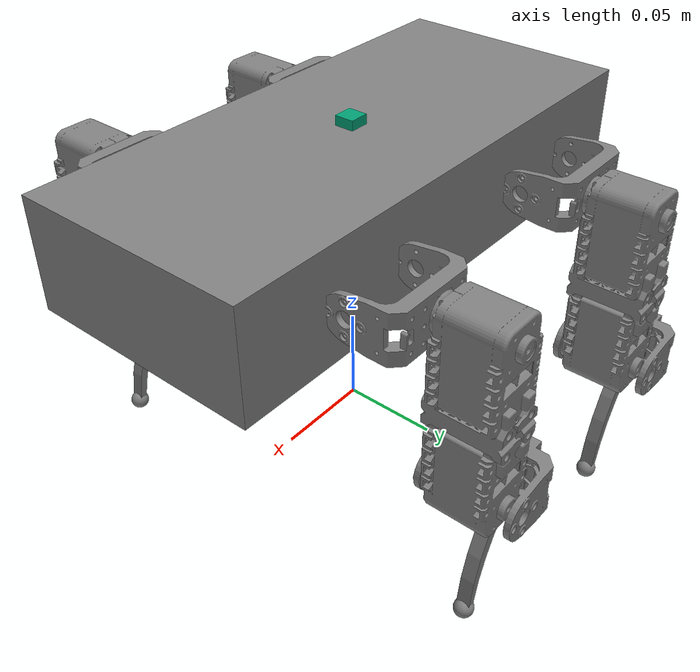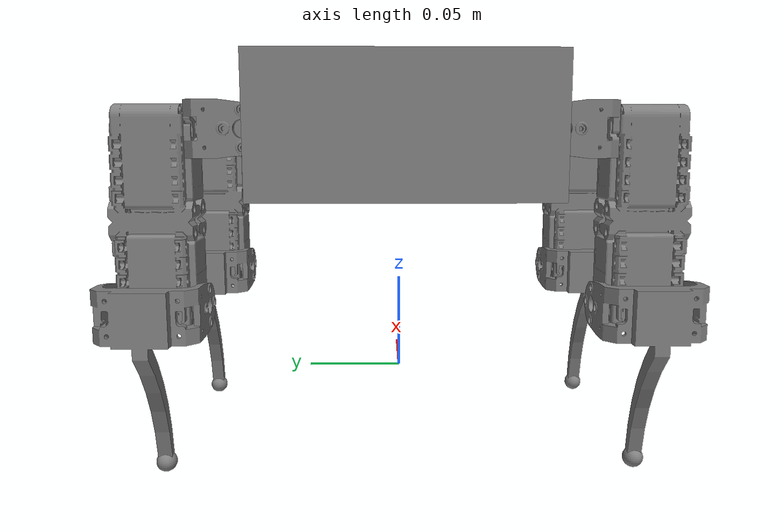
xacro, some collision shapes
<?xml version="1.0"?>
<robot xmlns:xacro="http://ros.org/wiki/xacro" name="pupbot">
  <material name="grey">
    <color rgba="0.5 0.5 0.5 1.0"/>
  </material>
  <!-- base -->
  <link name="world"/>
  <!-- body -->
  <joint name="base_joint" type="fixed">
    <parent link="world"/>
    <child link="base_link"/>
    <origin xyz="0 0 0" rpy="0 0 0"/>
  </joint>
  <link name="base_link">
    <inertial>
      <origin xyz="0 0 0.13" rpy="0 0 0"/>
      <mass value="0.796"/>
      <inertia ixx="0.0011654561" ixy="0.0" ixz="0.0" iyy="0.00488505272" iyz="0.0" izz="0.00562999661"/>
    </inertial>
    <visual>
      <origin xyz="0 0 0.13" rpy="0 0 0"/>
      <geometry>
        <mesh filename="package://pupbot/stl/body.stl"/>
      </geometry>
      <material name="grey"/>
    </visual>
    <collision>
      <origin xyz="0 0 0.13" rpy="0 0 0"/>
      <geometry>
        <box size="0.26547 0.12 0.0563"/>
      </geometry>
    </collision>
  </link>
  <gazebo reference="base_link">
    <material>Gazebo/DarkGrey</material>
    <selfCollide>true</selfCollide>
  </gazebo>
  <!-- IMU -->
  <joint name="imu_joint" type="fixed">
    <parent link="base_link"/>
    <child link="imu_link"/>
    <origin xyz="0 0 0" rpy="0 0 0"/>
  </joint>
  <link name="imu_link">
    <visual>
      <origin rpy="0 0 0" xyz="0 0 0.15815"/>
      <geometry>
        <box size="0.01 0.01 0.01"/>
      </geometry>
    </visual>
  </link>
  <gazebo reference="imu_link">
    <sensor type="imu" name="imu">
      <always_on>true</always_on>
      <plugin filename="libgazebo_ros_imu_sensor.so" name="imu_plugin">
        <topicName>imu</topicName>
        <bodyName>imu_link</bodyName>
        <updateRateHZ>10.0</updateRateHZ>
        <gaussianNoise>0.0</gaussianNoise>
        <xyzOffset>0 0 0</xyzOffset>
        <rpyOffset>0 0 0</rpyOffset>
        <frameName>imu_link</frameName>
        <initialOrientationAsReference>false</initialOrientationAsReference>
      </plugin>
    </sensor>
  </gazebo>
  <!-- left_legs macro -->
  <xacro:macro name="left_legs_macro" params="prefix xyz1 xyz2 xyz3 xyz4 effort velocity">
    <!-- left leg shoulder -->
    <joint name="${prefix}_shoulder_joint" type="revolute">
      <origin xyz="${xyz1}" rpy="0 ${radians(-90)} 0"/>
      <parent link="base_link"/>
      <child link="${prefix}_shoulder_link"/>
      <axis xyz="0 0 1"/>
      <limit lower="-1" upper="1.5" effort="${effort}" velocity="${velocity}"/>
    </joint>
    <transmission name="${prefix}_shoulder_trans">
      <type>transmission_interface/SimpleTransmission</type>
      <joint name="${prefix}_shoulder_joint">
        <hardwareInterface>hardware_interface/EffortJointInterface</hardwareInterface>
      </joint>
      <actuator name="${prefix}_shoulder_motor">
        <hardwareInterface>hardware_interface/EffortJointInterface</hardwareInterface>
        <mechanismReduction>1</mechanismReduction>
      </actuator>
    </transmission>
    <link name="${prefix}_shoulder_link">
      <inertial>
        <origin xyz="0 0.015 ${xyz4}" rpy="0 0 0"/>
        <mass value="0.0090718"/>
        <inertia ixx="0.00000219235" ixy="0.0" ixz="0.0" iyy="0.00000219235" iyz="0.0" izz="0.000000604786667"/>
      </inertial>
      <visual>
        <origin xyz="${xyz2}" rpy="0 0 0"/>
        <geometry>
          <mesh filename="package://pupbot/stl/leg_shoulder.stl"/>
        </geometry>
        <material name="grey"/>
      </visual>
      <collision>
        <origin xyz="0 0.015 ${xyz4}" rpy="0 0 0"/>
        <geometry>
          <box size="0.02 0.02 0.05"/>
        </geometry>
      </collision>
    </link>
    <gazebo reference="${prefix}_shoulder_link">
      <material>Gazebo/Grey</material>
      <mu1>1.0</mu1>
      <mu2>1.0</mu2>
      <maxVel>1.0</maxVel>
      <minDepth>0.001</minDepth>
      <selfCollide>true</selfCollide>
    </gazebo>
    <!-- left leg upper -->
    <joint name="${prefix}_upper_joint" type="revolute">
      <origin xyz="${xyz3}" rpy="${radians(-90)} ${radians(90)} 0"/>
      <parent link="${prefix}_shoulder_link"/>
      <child link="${prefix}_upper_link"/>
      <axis xyz="0 0 1"/>
      <limit lower="-1.0" upper="2.0" effort="${effort}" velocity="${velocity}"/>
    </joint>
    <transmission name="${prefix}_upper_trans">
      <type>transmission_interface/SimpleTransmission</type>
      <joint name="${prefix}_upper_joint">
        <hardwareInterface>hardware_interface/EffortJointInterface</hardwareInterface>
      </joint>
      <actuator name="${prefix}_upper_motor">
        <hardwareInterface>hardware_interface/EffortJointInterface</hardwareInterface>
        <mechanismReduction>1</mechanismReduction>
      </actuator>
    </transmission>
    <link name="${prefix}_upper_link">
      <inertial>
        <origin xyz="0 0.04 0.015" rpy="0 0 0"/>
        <mass value="0.1273437"/>
        <inertia ixx="0.00009550777" ixy="0.0" ixz="0.0" iyy="0.00001379556" iyz="0.0" izz="0.00009020178"/>
      </inertial>
      <visual>
        <origin xyz="0 0 0" rpy="0 0 ${radians(180)}"/>
        <geometry>
          <mesh filename="package://pupbot/stl/leg_upper.stl"/>
        </geometry>
        <material name="grey"/>
      </visual>
      <collision>
        <origin xyz="0 0.04 0.015" rpy="0 0 0"/>
        <geometry>
          <box size="0.02 0.09 0.03"/>
        </geometry>
      </collision>
    </link>
    <gazebo reference="${prefix}_upper_link">
      <material>Gazebo/Grey</material>
      <mu1>1.0</mu1>
      <mu2>1.0</mu2>
      <maxVel>1.0</maxVel>
      <minDepth>0.001</minDepth>
      <selfCollide>true</selfCollide>
    </gazebo>
    <!-- left leg lower -->
    <joint name="${prefix}_lower_joint" type="revolute">
      <origin xyz="0 0.083 0" rpy="0 ${radians(180)} 0"/>
      <parent link="${prefix}_upper_link"/>
      <child link="${prefix}_lower_link"/>
      <axis xyz="0 0 1"/>
      <limit lower="0.0" upper="3.0" effort="${effort}" velocity="${velocity}"/>
    </joint>
    <transmission name="${prefix}_lower_trans">
      <type>transmission_interface/SimpleTransmission</type>
      <joint name="${prefix}_lower_joint">
        <hardwareInterface>hardware_interface/EffortJointInterface</hardwareInterface>
      </joint>
      <actuator name="${prefix}_lower_motor">
        <hardwareInterface>hardware_interface/EffortJointInterface</hardwareInterface>
        <mechanismReduction>1</mechanismReduction>
      </actuator>
    </transmission>
    <link name="${prefix}_lower_link">
      <inertial>
        <origin xyz="0 0.0365 -0.021" rpy="0 ${radians(-180)} 0"/>
        <mass value="0.0181437"/>
        <inertia ixx="0.00000820851" ixy="0.0" ixz="0.0" iyy="0.000000302395" iyz="0.0" izz="0.00000820851"/>
      </inertial>
      <visual>
        <origin xyz="0 0 -0.042" rpy="0 ${radians(-90)} 0"/>
        <geometry>
          <mesh filename="package://pupbot/stl/leg_lower.stl"/>
        </geometry>
        <material name="grey"/>
      </visual>
      <collision>
        <origin xyz="0 0.0365 -0.021" rpy="0 0 0"/>
        <geometry>
          <box size="0.01 0.073 0.01"/>
        </geometry>
      </collision>
    </link>
    <gazebo reference="${prefix}_lower_link">
      <material>Gazebo/Grey</material>
      <mu1>1.0</mu1>
      <mu2>1.0</mu2>
      <maxVel>1.0</maxVel>
      <minDepth>0.001</minDepth>
      <selfCollide>true</selfCollide>
    </gazebo>
    <joint name="${prefix}_lower_ball_joint" type="fixed">
      <origin xyz="0 0.073 0" rpy="0 0 0"/>
      <parent link="${prefix}_lower_link"/>
      <child link="${prefix}_lower_ball"/>
    </joint>
    <link name="${prefix}_lower_ball">
      <collision>
        <origin xyz="0 0.005 -0.021" rpy="0 0 0"/>
        <geometry>
          <sphere radius="0.005"/>
        </geometry>
      </collision>
    </link>
    <gazebo reference="${prefix}_lower_ball">
      <material>Gazebo/Grey</material>
      <mu1>0.5</mu1>
      <mu2>0.5</mu2>
      <maxVel>1.0</maxVel>
      <minDepth>0.001</minDepth>
      <selfCollide>true</selfCollide>
    </gazebo>
  </xacro:macro>
  <!-- left legs -->
  <xacro:left_legs_macro prefix="leftfront_leg" xyz1="0.0834 0.068518 0.13" xyz2="0.0 0.0 0.0" xyz3="0 0.026 0.025" xyz4="0.02" effort="1.5" velocity="6.17"/>
  <xacro:left_legs_macro prefix="leftback_leg" xyz1="-0.0834 0.068518 0.13" xyz2="0.0 0.0 -0.042" xyz3="0 0.026 -0.025" xyz4="-0.02" effort="1.5" velocity="6.17"/>
  <!-- right_legs macro -->
  <xacro:macro name="right_legs_macro" params="prefix xyz1 xyz2 xyz3 xyz4 effort velocity">
    <!-- right leg shoulder -->
    <joint name="${prefix}_shoulder_joint" type="revolute">
      <origin xyz="${xyz1}" rpy="0 ${radians(-90)} 0"/>
      <parent link="base_link"/>
      <child link="${prefix}_shoulder_link"/>
      <axis xyz="0 0 1"/>
      <limit lower="-1.5" upper="1" effort="${effort}" velocity="${velocity}"/>
    </joint>
    <transmission name="${prefix}_shoulder_trans">
      <type>transmission_interface/SimpleTransmission</type>
      <joint name="${prefix}_shoulder_joint">
        <hardwareInterface>hardware_interface/EffortJointInterface</hardwareInterface>
      </joint>
      <actuator name="${prefix}_shoulder_motor">
        <hardwareInterface>hardware_interface/EffortJointInterface</hardwareInterface>
        <mechanismReduction>1</mechanismReduction>
      </actuator>
    </transmission>
    <link name="${prefix}_shoulder_link">
      <inertial>
        <origin xyz="0 -0.015 ${xyz4}" rpy="0 0 0"/>
        <mass value="0.0090718"/>
        <inertia ixx="0.00000219235" ixy="0.0" ixz="0.0" iyy="0.00000219235" iyz="0.0" izz="0.000000604786667"/>
      </inertial>
      <visual>
        <origin xyz="${xyz2}" rpy="0 0 ${radians(180)}"/>
        <geometry>
          <mesh filename="package://pupbot/stl/leg_shoulder.stl"/>
        </geometry>
        <material name="grey"/>
      </visual>
      <collision>
        <origin xyz="0 -0.015 ${xyz4}" rpy="0 0 0"/>
        <geometry>
          <box size="0.02 0.02 0.05"/>
        </geometry>
      </collision>
    </link>
    <gazebo reference="${prefix}_shoulder_link">
      <material>Gazebo/Grey</material>
      <mu1>1.0</mu1>
      <mu2>1.0</mu2>
      <maxVel>1.0</maxVel>
      <minDepth>0.001</minDepth>
      <selfCollide>true</selfCollide>
    </gazebo>
    <!-- right leg upper -->
    <joint name="${prefix}_upper_joint" type="revolute">
      <origin xyz="${xyz3}" rpy="${radians(90)} ${radians(-90)} 0"/>
      <parent link="${prefix}_shoulder_link"/>
      <child link="${prefix}_upper_link"/>
      <axis xyz="0 0 1"/>
      <limit lower="-2.0" upper="1.0" effort="${effort}" velocity="${velocity}"/>
    </joint>
    <transmission name="${prefix}_upper_trans">
      <type>transmission_interface/SimpleTransmission</type>
      <joint name="${prefix}_upper_joint">
        <hardwareInterface>hardware_interface/EffortJointInterface</hardwareInterface>
      </joint>
      <actuator name="${prefix}_upper_motor">
        <hardwareInterface>hardware_interface/EffortJointInterface</hardwareInterface>
        <mechanismReduction>1</mechanismReduction>
      </actuator>
    </transmission>
    <link name="${prefix}_upper_link">
      <inertial>
        <origin xyz="0 0.04 0.015" rpy="0 ${radians(180)} 0"/>
        <mass value="0.1273437"/>
        <inertia ixx="0.00009550777" ixy="0.0" ixz="0.0" iyy="0.00001379556" iyz="0.0" izz="0.00009020178"/>
      </inertial>
      <visual>
        <origin xyz="0 0 0" rpy="0 ${radians(0)} ${radians(180)}"/>
        <geometry>
          <mesh filename="package://pupbot/stl/leg_upper.stl"/>
        </geometry>
        <material name="grey"/>
      </visual>
      <collision>
        <origin xyz="0 0.04 0.015" rpy="0 0 0"/>
        <geometry>
          <box size="0.02 0.09 0.03"/>
        </geometry>
      </collision>
    </link>
    <gazebo reference="${prefix}_upper_link">
      <material>Gazebo/Grey</material>
      <mu1>1.0</mu1>
      <mu2>1.0</mu2>
      <maxVel>1.0</maxVel>
      <minDepth>0.001</minDepth>
      <selfCollide>true</selfCollide>
    </gazebo>
    <!-- right leg lower -->
    <joint name="${prefix}_lower_joint" type="revolute">
      <origin xyz="0 0.083 0" rpy="0 ${radians(180)} 0"/>
      <parent link="${prefix}_upper_link"/>
      <child link="${prefix}_lower_link"/>
      <axis xyz="0 0 1"/>
      <limit lower="-3.0" upper="0.0" effort="${effort}" velocity="${velocity}"/>
    </joint>
    <transmission name="${prefix}_lower_trans">
      <type>transmission_interface/SimpleTransmission</type>
      <joint name="${prefix}_lower_joint">
        <hardwareInterface>hardware_interface/EffortJointInterface</hardwareInterface>
      </joint>
      <actuator name="${prefix}_lower_motor">
        <hardwareInterface>hardware_interface/EffortJointInterface</hardwareInterface>
        <mechanismReduction>1</mechanismReduction>
      </actuator>
    </transmission>
    <link name="${prefix}_lower_link">
      <inertial>
        <origin xyz="0 0.0365 -0.021" rpy="0 0 0"/>
        <mass value="0.0181437"/>
        <inertia ixx="0.00000820851" ixy="0.0" ixz="0.0" iyy="0.000000302395" iyz="0.0" izz="0.00000820851"/>
      </inertial>
      <visual>
        <origin xyz="0 0 0" rpy="0 ${radians(90)} 0"/>
        <geometry>
          <mesh filename="package://pupbot/stl/leg_lower.stl"/>
        </geometry>
        <material name="grey"/>
      </visual>
      <collision>
        <origin xyz="0 0.0365 -0.021" rpy="0 0 0"/>
        <geometry>
          <box size="0.01 0.073 0.01"/>
        </geometry>
      </collision>
    </link>
    <gazebo reference="${prefix}_lower_link">
      <material>Gazebo/Grey</material>
      <mu1>1.0</mu1>
      <mu2>1.0</mu2>
      <maxVel>1.0</maxVel>
      <minDepth>0.001</minDepth>
      <selfCollide>true</selfCollide>
    </gazebo>
    <joint name="${prefix}_lower_ball_joint" type="fixed">
      <origin xyz="0 0.073 0" rpy="0 0 0"/>
      <parent link="${prefix}_lower_link"/>
      <child link="${prefix}_lower_ball"/>
    </joint>
    <link name="${prefix}_lower_ball">
      <collision>
        <origin xyz="0 0.005 -0.021" rpy="0 0 0"/>
        <geometry>
          <sphere radius="0.005"/>
        </geometry>
      </collision>
    </link>
    <gazebo reference="${prefix}_lower_ball">
      <material>Gazebo/Grey</material>
      <mu1>0.5</mu1>
      <mu2>0.5</mu2>
      <maxVel>1.0</maxVel>
      <minDepth>0.001</minDepth>
      <selfCollide>true</selfCollide>
    </gazebo>
  </xacro:macro>
  <!-- right legs -->
  <xacro:right_legs_macro prefix="rightfront_leg" xyz1="0.0834 -0.068518 0.13" xyz2="0.0 0.0 0.0" xyz3="0 -0.026 0.025" xyz4="0.02" effort="1.5" velocity="6.17"/>
  <xacro:right_legs_macro prefix="rightback_leg" xyz1="-0.0834 -0.068518 0.13" xyz2="0.0 0.0 -0.042" xyz3="0 -0.026 -0.025" xyz4="-0.02" effort="1.5" velocity="6.17"/>
  <!-- gazebo plugin -->
  <gazebo>
    <plugin name="gazebo_ros_control" filename="libgazebo_ros_control.so">
      <robotNamespace>/</robotNamespace>
      <robotSimType>gazebo_ros_control/DefaultRobotHWSim</robotSimType>
      <legacyModeNS>true</legacyModeNS>
    </plugin>
    <plugin name="joint_state_publisher" filename="libgazebo_ros_joint_state_publisher.so">
      <robotNamespace>/</robotNamespace>
      <jointName>leftfront_leg_shoulder_joint, leftback_leg_shoulder_joint, rightfront_leg_shoulder_joint, rightback_leg_shoulder_joint, leftfront_leg_upper_joint, leftback_leg_upper_joint, rightfront_leg_upper_joint, rightback_leg_upper_joint, leftfront_leg_lower_joint, leftback_leg_lower_joint, rightfront_leg_lower_joint, rightback_leg_lower_joint</jointName>
      <updateRate>10.0</updateRate>
    </plugin>
  </gazebo>
</robot>
